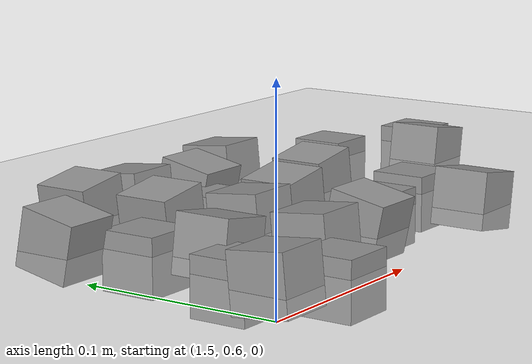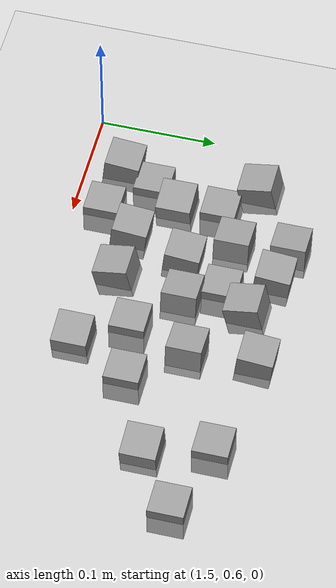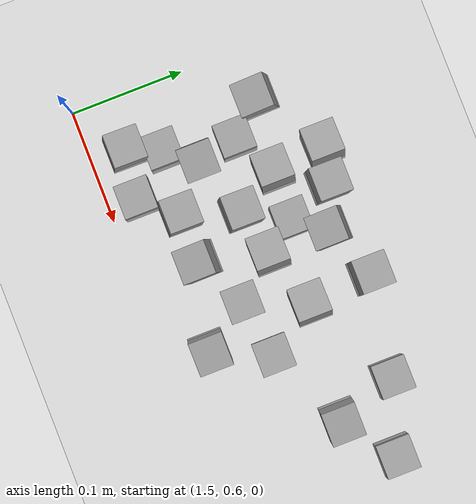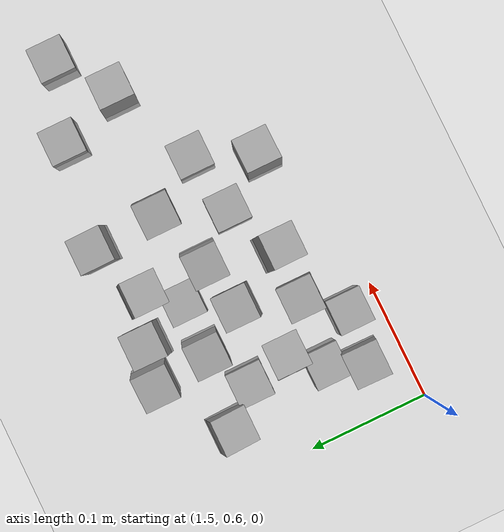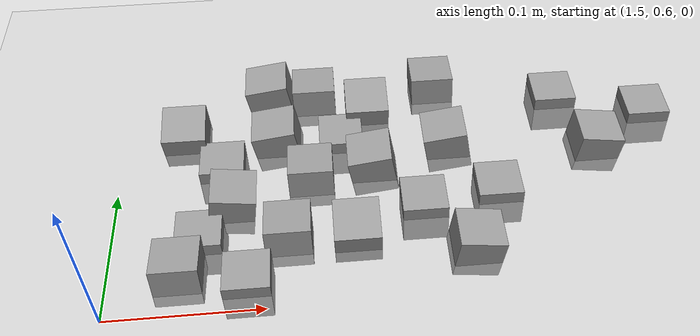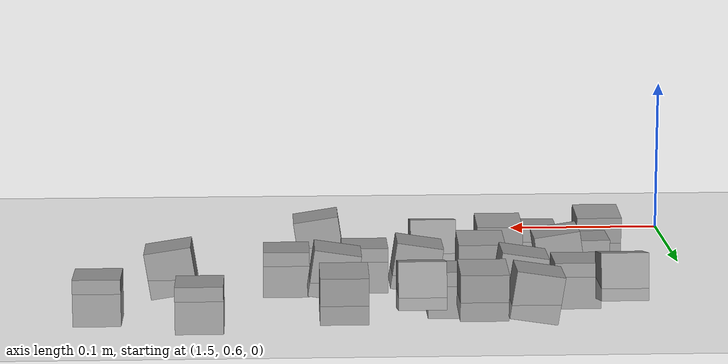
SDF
<sdf version="1.7">
 <world name="default">
  <model name="ground_plane">
   <static>1</static>
   <link name="link">
    <collision name="collision">
     <geometry><plane><normal>0 0 1</normal><size>100 100</size></plane></geometry>
     <surface><friction><ode><mu>100</mu><mu2>50</mu2></ode></friction></surface>
    </collision>
    <visual name="visual">
     <cast_shadows>0</cast_shadows>
     <geometry><plane><normal>0 0 1</normal><size>100 100</size></plane></geometry>
     <material>
      <script><uri>file://media/materials/scripts/gazebo.material</uri><name>Gazebo/Grey</name></script>
     </material>
    </visual>
   </link>
  </model>
  <model name="stone_road_0">
   <link name="link_0_clone_11">
    <inertial>
     <mass>1</mass>
     <inertia>
      <ixx>0.166667</ixx>
      <ixy>0</ixy>
      <ixz>0</ixz>
      <iyy>0.166667</iyy>
      <iyz>0</iyz>
      <izz>0.166667</izz>
     </inertia>
    </inertial>
    <pose>0.007758 0.071496 0.003778 0.2 -0 0</pose>
    <kinematic>1</kinematic>
    <visual name="visual">
     <geometry><box><size>0.03 0.03 0.03</size></box></geometry>
     <material>
      <lighting>1</lighting>
      <script><uri>file://media/materials/scripts/gazebo.material</uri><name>Gazebo/Grey</name></script>
      <shader type="pixel"><normal_map>__default__</normal_map></shader>
      <ambient>0.3 0.3 0.3 1</ambient>
      <diffuse>0.7 0.7 0.7 1</diffuse>
      <specular>0.01 0.01 0.01 1</specular>
      <emissive>0 0 0 1</emissive>
     </material>
    </visual>
    <collision name="collision">
     <geometry><box><size>0.03 0.03 0.03</size></box></geometry>
     <surface>
      <friction>
       <ode><mu>1</mu><mu2>1</mu2><fdir1>0 0 0</fdir1><slip1>0</slip1><slip2>0</slip2></ode>
       <torsional>
        <coefficient>1</coefficient>
        <patch_radius>0</patch_radius>
        <surface_radius>0</surface_radius>
        <use_patch_radius>1</use_patch_radius>
        <ode><slip>0</slip></ode>
       </torsional>
      </friction>
      <bounce><restitution_coefficient>0</restitution_coefficient><threshold>1e+06</threshold></bounce>
      <contact>
       <collide_without_contact>0</collide_without_contact>
       <collide_without_contact_bitmask>1</collide_without_contact_bitmask>
       <collide_bitmask>1</collide_bitmask>
       <ode>
        <soft_cfm>0</soft_cfm>
        <soft_erp>0.2</soft_erp>
        <kp>1e+13</kp>
        <kd>1</kd>
        <max_vel>0.01</max_vel>
        <min_depth>0</min_depth>
       </ode>
       <bullet>
        <split_impulse>1</split_impulse>
        <split_impulse_penetration_threshold>-0.01</split_impulse_penetration_threshold>
        <soft_cfm>0</soft_cfm>
        <soft_erp>0.2</soft_erp>
        <kp>1e+13</kp>
        <kd>1</kd>
       </bullet>
      </contact>
     </surface>
    </collision>
   </link>
   <link name="link_0_clone_2_clone_1">
    <inertial>
     <mass>1</mass>
     <inertia>
      <ixx>0.166667</ixx>
      <ixy>0</ixy>
      <ixz>0</ixz>
      <iyy>0.166667</iyy>
      <iyz>0</iyz>
      <izz>0.166667</izz>
     </inertia>
    </inertial>
    <pose>0.041447 0.006316 0.003778 0 0.15 0</pose>
    <kinematic>1</kinematic>
    <visual name="visual">
     <geometry><box><size>0.03 0.03 0.03</size></box></geometry>
     <material>
      <lighting>1</lighting>
      <script><uri>file://media/materials/scripts/gazebo.material</uri><name>Gazebo/Grey</name></script>
      <shader type="pixel"><normal_map>__default__</normal_map></shader>
      <ambient>0.3 0.3 0.3 1</ambient>
      <diffuse>0.7 0.7 0.7 1</diffuse>
      <specular>0.01 0.01 0.01 1</specular>
      <emissive>0 0 0 1</emissive>
     </material>
    </visual>
    <collision name="collision">
     <geometry><box><size>0.03 0.03 0.03</size></box></geometry>
     <surface>
      <friction>
       <ode><mu>1</mu><mu2>1</mu2><fdir1>0 0 0</fdir1><slip1>0</slip1><slip2>0</slip2></ode>
       <torsional>
        <coefficient>1</coefficient>
        <patch_radius>0</patch_radius>
        <surface_radius>0</surface_radius>
        <use_patch_radius>1</use_patch_radius>
        <ode><slip>0</slip></ode>
       </torsional>
      </friction>
      <bounce><restitution_coefficient>0</restitution_coefficient><threshold>1e+06</threshold></bounce>
      <contact>
       <collide_without_contact>0</collide_without_contact>
       <collide_without_contact_bitmask>1</collide_without_contact_bitmask>
       <collide_bitmask>1</collide_bitmask>
       <ode>
        <soft_cfm>0</soft_cfm>
        <soft_erp>0.2</soft_erp>
        <kp>1e+13</kp>
        <kd>1</kd>
        <max_vel>0.01</max_vel>
        <min_depth>0</min_depth>
       </ode>
       <bullet>
        <split_impulse>1</split_impulse>
        <split_impulse_penetration_threshold>-0.01</split_impulse_penetration_threshold>
        <soft_cfm>0</soft_cfm>
        <soft_erp>0.2</soft_erp>
        <kp>1e+13</kp>
        <kd>1</kd>
       </bullet>
      </contact>
     </surface>
    </collision>
   </link>
   <link name="link_0_clone_2_clone_2">
    <inertial>
     <mass>1</mass>
     <inertia>
      <ixx>0.166667</ixx>
      <ixy>0</ixy>
      <ixz>0</ixz>
      <iyy>0.166667</iyy>
      <iyz>0</iyz>
      <izz>0.166667</izz>
     </inertia>
    </inertial>
    <pose>0.066563 0.110568 0.003778 0 -0.15 0</pose>
    <kinematic>1</kinematic>
    <visual name="visual">
     <geometry><box><size>0.03 0.03 0.03</size></box></geometry>
     <material>
      <lighting>1</lighting>
      <script><uri>file://media/materials/scripts/gazebo.material</uri><name>Gazebo/Grey</name></script>
      <shader type="pixel"><normal_map>__default__</normal_map></shader>
      <ambient>0.3 0.3 0.3 1</ambient>
      <diffuse>0.7 0.7 0.7 1</diffuse>
      <specular>0.01 0.01 0.01 1</specular>
      <emissive>0 0 0 1</emissive>
     </material>
    </visual>
    <collision name="collision">
     <geometry><box><size>0.03 0.03 0.03</size></box></geometry>
     <surface>
      <friction>
       <ode><mu>1</mu><mu2>1</mu2><fdir1>0 0 0</fdir1><slip1>0</slip1><slip2>0</slip2></ode>
       <torsional>
        <coefficient>1</coefficient>
        <patch_radius>0</patch_radius>
        <surface_radius>0</surface_radius>
        <use_patch_radius>1</use_patch_radius>
        <ode><slip>0</slip></ode>
       </torsional>
      </friction>
      <bounce><restitution_coefficient>0</restitution_coefficient><threshold>1e+06</threshold></bounce>
      <contact>
       <collide_without_contact>0</collide_without_contact>
       <collide_without_contact_bitmask>1</collide_without_contact_bitmask>
       <collide_bitmask>1</collide_bitmask>
       <ode>
        <soft_cfm>0</soft_cfm>
        <soft_erp>0.2</soft_erp>
        <kp>1e+13</kp>
        <kd>1</kd>
        <max_vel>0.01</max_vel>
        <min_depth>0</min_depth>
       </ode>
       <bullet>
        <split_impulse>1</split_impulse>
        <split_impulse_penetration_threshold>-0.01</split_impulse_penetration_threshold>
        <soft_cfm>0</soft_cfm>
        <soft_erp>0.2</soft_erp>
        <kp>1e+13</kp>
        <kd>1</kd>
       </bullet>
      </contact>
     </surface>
    </collision>
   </link>
   <link name="link_0_clone_2_clone_2_clone">
    <inertial>
     <mass>1</mass>
     <inertia>
      <ixx>0.166667</ixx>
      <ixy>0</ixy>
      <ixz>0</ixz>
      <iyy>0.166667</iyy>
      <iyz>0</iyz>
      <izz>0.166667</izz>
     </inertia>
    </inertial>
    <pose>0.189059 0.051135 0.003778 0 -0.15 0</pose>
    <kinematic>1</kinematic>
    <visual name="visual">
     <geometry><box><size>0.03 0.03 0.03</size></box></geometry>
     <material>
      <lighting>1</lighting>
      <script><uri>file://media/materials/scripts/gazebo.material</uri><name>Gazebo/Grey</name></script>
      <shader type="pixel"><normal_map>__default__</normal_map></shader>
      <ambient>0.3 0.3 0.3 1</ambient>
      <diffuse>0.7 0.7 0.7 1</diffuse>
      <specular>0.01 0.01 0.01 1</specular>
      <emissive>0 0 0 1</emissive>
     </material>
    </visual>
    <collision name="collision">
     <geometry><box><size>0.03 0.03 0.03</size></box></geometry>
     <surface>
      <friction>
       <ode><mu>1</mu><mu2>1</mu2><fdir1>0 0 0</fdir1><slip1>0</slip1><slip2>0</slip2></ode>
       <torsional>
        <coefficient>1</coefficient>
        <patch_radius>0</patch_radius>
        <surface_radius>0</surface_radius>
        <use_patch_radius>1</use_patch_radius>
        <ode><slip>0</slip></ode>
       </torsional>
      </friction>
      <bounce><restitution_coefficient>0</restitution_coefficient><threshold>1e+06</threshold></bounce>
      <contact>
       <collide_without_contact>0</collide_without_contact>
       <collide_without_contact_bitmask>1</collide_without_contact_bitmask>
       <collide_bitmask>1</collide_bitmask>
       <ode>
        <soft_cfm>0</soft_cfm>
        <soft_erp>0.2</soft_erp>
        <kp>1e+13</kp>
        <kd>1</kd>
        <max_vel>0.01</max_vel>
        <min_depth>0</min_depth>
       </ode>
       <bullet>
        <split_impulse>1</split_impulse>
        <split_impulse_penetration_threshold>-0.01</split_impulse_penetration_threshold>
        <soft_cfm>0</soft_cfm>
        <soft_erp>0.2</soft_erp>
        <kp>1e+13</kp>
        <kd>1</kd>
       </bullet>
      </contact>
     </surface>
    </collision>
   </link>
   <link name="link_0_clone_2_clone_2_clone_13_clone_clone">
    <inertial>
     <mass>1</mass>
     <inertia>
      <ixx>0.166667</ixx>
      <ixy>0</ixy>
      <ixz>0</ixz>
      <iyy>0.166667</iyy>
      <iyz>0</iyz>
      <izz>0.166667</izz>
     </inertia>
    </inertial>
    <pose>0.184456 0.108712 0.003778 -0.1 0 0</pose>
    <kinematic>1</kinematic>
    <visual name="visual">
     <geometry><box><size>0.03 0.03 0.03</size></box></geometry>
     <material>
      <lighting>1</lighting>
      <script><uri>file://media/materials/scripts/gazebo.material</uri><name>Gazebo/Grey</name></script>
      <shader type="pixel"><normal_map>__default__</normal_map></shader>
      <ambient>0.3 0.3 0.3 1</ambient>
      <diffuse>0.7 0.7 0.7 1</diffuse>
      <specular>0.01 0.01 0.01 1</specular>
      <emissive>0 0 0 1</emissive>
     </material>
    </visual>
    <collision name="collision">
     <geometry><box><size>0.03 0.03 0.03</size></box></geometry>
     <surface>
      <friction>
       <ode><mu>1</mu><mu2>1</mu2><fdir1>0 0 0</fdir1><slip1>0</slip1><slip2>0</slip2></ode>
       <torsional>
        <coefficient>1</coefficient>
        <patch_radius>0</patch_radius>
        <surface_radius>0</surface_radius>
        <use_patch_radius>1</use_patch_radius>
        <ode><slip>0</slip></ode>
       </torsional>
      </friction>
      <bounce><restitution_coefficient>0</restitution_coefficient><threshold>1e+06</threshold></bounce>
      <contact>
       <collide_without_contact>0</collide_without_contact>
       <collide_without_contact_bitmask>1</collide_without_contact_bitmask>
       <collide_bitmask>1</collide_bitmask>
       <ode>
        <soft_cfm>0</soft_cfm>
        <soft_erp>0.2</soft_erp>
        <kp>1e+13</kp>
        <kd>1</kd>
        <max_vel>0.01</max_vel>
        <min_depth>0</min_depth>
       </ode>
       <bullet>
        <split_impulse>1</split_impulse>
        <split_impulse_penetration_threshold>-0.01</split_impulse_penetration_threshold>
        <soft_cfm>0</soft_cfm>
        <soft_erp>0.2</soft_erp>
        <kp>1e+13</kp>
        <kd>1</kd>
       </bullet>
      </contact>
     </surface>
    </collision>
   </link>
   <link name="link_0_clone_2_clone_2_clone_13_clone_clone_0">
    <inertial>
     <mass>1</mass>
     <inertia>
      <ixx>0.166667</ixx>
      <ixy>0</ixy>
      <ixz>0</ixz>
      <iyy>0.166667</iyy>
      <iyz>0</iyz>
      <izz>0.166667</izz>
     </inertia>
    </inertial>
    <pose>0.094072 0.02539 0.003778 -0.1 0 0</pose>
    <kinematic>1</kinematic>
    <visual name="visual">
     <geometry><box><size>0.03 0.03 0.03</size></box></geometry>
     <material>
      <lighting>1</lighting>
      <script><uri>file://media/materials/scripts/gazebo.material</uri><name>Gazebo/Grey</name></script>
      <shader type="pixel"><normal_map>__default__</normal_map></shader>
      <ambient>0.3 0.3 0.3 1</ambient>
      <diffuse>0.7 0.7 0.7 1</diffuse>
      <specular>0.01 0.01 0.01 1</specular>
      <emissive>0 0 0 1</emissive>
     </material>
    </visual>
    <collision name="collision">
     <geometry><box><size>0.03 0.03 0.03</size></box></geometry>
     <surface>
      <friction>
       <ode><mu>1</mu><mu2>1</mu2><fdir1>0 0 0</fdir1><slip1>0</slip1><slip2>0</slip2></ode>
       <torsional>
        <coefficient>1</coefficient>
        <patch_radius>0</patch_radius>
        <surface_radius>0</surface_radius>
        <use_patch_radius>1</use_patch_radius>
        <ode><slip>0</slip></ode>
       </torsional>
      </friction>
      <bounce><restitution_coefficient>0</restitution_coefficient><threshold>1e+06</threshold></bounce>
      <contact>
       <collide_without_contact>0</collide_without_contact>
       <collide_without_contact_bitmask>1</collide_without_contact_bitmask>
       <collide_bitmask>1</collide_bitmask>
       <ode>
        <soft_cfm>0</soft_cfm>
        <soft_erp>0.2</soft_erp>
        <kp>1e+13</kp>
        <kd>1</kd>
        <max_vel>0.01</max_vel>
        <min_depth>0</min_depth>
       </ode>
       <bullet>
        <split_impulse>1</split_impulse>
        <split_impulse_penetration_threshold>-0.01</split_impulse_penetration_threshold>
        <soft_cfm>0</soft_cfm>
        <soft_erp>0.2</soft_erp>
        <kp>1e+13</kp>
        <kd>1</kd>
       </bullet>
      </contact>
     </surface>
    </collision>
   </link>
   <link name="link_0_clone_2_clone_2_clone_13_clone_clone_1">
    <inertial>
     <mass>1</mass>
     <inertia>
      <ixx>0.166667</ixx>
      <ixy>0</ixy>
      <ixz>0</ixz>
      <iyy>0.166667</iyy>
      <iyz>0</iyz>
      <izz>0.166667</izz>
     </inertia>
    </inertial>
    <pose>0.098415 0.103772 0.003778 -0.1 0 0</pose>
    <kinematic>1</kinematic>
    <visual name="visual">
     <geometry><box><size>0.03 0.03 0.03</size></box></geometry>
     <material>
      <lighting>1</lighting>
      <script><uri>file://media/materials/scripts/gazebo.material</uri><name>Gazebo/Grey</name></script>
      <shader type="pixel"><normal_map>__default__</normal_map></shader>
      <ambient>0.3 0.3 0.3 1</ambient>
      <diffuse>0.7 0.7 0.7 1</diffuse>
      <specular>0.01 0.01 0.01 1</specular>
      <emissive>0 0 0 1</emissive>
     </material>
    </visual>
    <collision name="collision">
     <geometry><box><size>0.03 0.03 0.03</size></box></geometry>
     <surface>
      <friction>
       <ode><mu>1</mu><mu2>1</mu2><fdir1>0 0 0</fdir1><slip1>0</slip1><slip2>0</slip2></ode>
       <torsional>
        <coefficient>1</coefficient>
        <patch_radius>0</patch_radius>
        <surface_radius>0</surface_radius>
        <use_patch_radius>1</use_patch_radius>
        <ode><slip>0</slip></ode>
       </torsional>
      </friction>
      <bounce><restitution_coefficient>0</restitution_coefficient><threshold>1e+06</threshold></bounce>
      <contact>
       <collide_without_contact>0</collide_without_contact>
       <collide_without_contact_bitmask>1</collide_without_contact_bitmask>
       <collide_bitmask>1</collide_bitmask>
       <ode>
        <soft_cfm>0</soft_cfm>
        <soft_erp>0.2</soft_erp>
        <kp>1e+13</kp>
        <kd>1</kd>
        <max_vel>0.01</max_vel>
        <min_depth>0</min_depth>
       </ode>
       <bullet>
        <split_impulse>1</split_impulse>
        <split_impulse_penetration_threshold>-0.01</split_impulse_penetration_threshold>
        <soft_cfm>0</soft_cfm>
        <soft_erp>0.2</soft_erp>
        <kp>1e+13</kp>
        <kd>1</kd>
       </bullet>
      </contact>
     </surface>
    </collision>
   </link>
   <link name="link_0_clone_2_clone_2_clone_13_clone_clone_16_clone_1">
    <inertial>
     <mass>1</mass>
     <inertia>
      <ixx>0.166667</ixx>
      <ixy>0</ixy>
      <ixz>0</ixz>
      <iyy>0.166667</iyy>
      <iyz>0</iyz>
      <izz>0.166667</izz>
     </inertia>
    </inertial>
    <pose>0.033787 0.042837 -0.006222 0 -0 0</pose>
    <kinematic>1</kinematic>
    <visual name="visual">
     <geometry><box><size>0.03 0.03 0.03</size></box></geometry>
     <material>
      <lighting>1</lighting>
      <script><uri>file://media/materials/scripts/gazebo.material</uri><name>Gazebo/Grey</name></script>
      <shader type="pixel"><normal_map>__default__</normal_map></shader>
      <ambient>0.3 0.3 0.3 1</ambient>
      <diffuse>0.7 0.7 0.7 1</diffuse>
      <specular>0.01 0.01 0.01 1</specular>
      <emissive>0 0 0 1</emissive>
     </material>
    </visual>
    <collision name="collision">
     <geometry><box><size>0.03 0.03 0.03</size></box></geometry>
     <surface>
      <friction>
       <ode><mu>1</mu><mu2>1</mu2><fdir1>0 0 0</fdir1><slip1>0</slip1><slip2>0</slip2></ode>
       <torsional>
        <coefficient>1</coefficient>
        <patch_radius>0</patch_radius>
        <surface_radius>0</surface_radius>
        <use_patch_radius>1</use_patch_radius>
        <ode><slip>0</slip></ode>
       </torsional>
      </friction>
      <bounce><restitution_coefficient>0</restitution_coefficient><threshold>1e+06</threshold></bounce>
      <contact>
       <collide_without_contact>0</collide_without_contact>
       <collide_without_contact_bitmask>1</collide_without_contact_bitmask>
       <collide_bitmask>1</collide_bitmask>
       <ode>
        <soft_cfm>0</soft_cfm>
        <soft_erp>0.2</soft_erp>
        <kp>1e+13</kp>
        <kd>1</kd>
        <max_vel>0.01</max_vel>
        <min_depth>0</min_depth>
       </ode>
       <bullet>
        <split_impulse>1</split_impulse>
        <split_impulse_penetration_threshold>-0.01</split_impulse_penetration_threshold>
        <soft_cfm>0</soft_cfm>
        <soft_erp>0.2</soft_erp>
        <kp>1e+13</kp>
        <kd>1</kd>
       </bullet>
      </contact>
     </surface>
    </collision>
   </link>
   <link name="link_0_clone_2_clone_2_clone_13_clone_clone_16_clone_13">
    <inertial>
     <mass>1</mass>
     <inertia>
      <ixx>0.166667</ixx>
      <ixy>0</ixy>
      <ixz>0</ixz>
      <iyy>0.166667</iyy>
      <iyz>0</iyz>
      <izz>0.166667</izz>
     </inertia>
    </inertial>
    <pose>0.168013 -0.00203 -0.006222 0 -0 0</pose>
    <kinematic>1</kinematic>
    <visual name="visual">
     <geometry><box><size>0.03 0.03 0.03</size></box></geometry>
     <material>
      <lighting>1</lighting>
      <script><uri>file://media/materials/scripts/gazebo.material</uri><name>Gazebo/Grey</name></script>
      <shader type="pixel"><normal_map>__default__</normal_map></shader>
      <ambient>0.3 0.3 0.3 1</ambient>
      <diffuse>0.7 0.7 0.7 1</diffuse>
      <specular>0.01 0.01 0.01 1</specular>
      <emissive>0 0 0 1</emissive>
     </material>
    </visual>
    <collision name="collision">
     <geometry><box><size>0.03 0.03 0.03</size></box></geometry>
     <surface>
      <friction>
       <ode><mu>1</mu><mu2>1</mu2><fdir1>0 0 0</fdir1><slip1>0</slip1><slip2>0</slip2></ode>
       <torsional>
        <coefficient>1</coefficient>
        <patch_radius>0</patch_radius>
        <surface_radius>0</surface_radius>
        <use_patch_radius>1</use_patch_radius>
        <ode><slip>0</slip></ode>
       </torsional>
      </friction>
      <bounce><restitution_coefficient>0</restitution_coefficient><threshold>1e+06</threshold></bounce>
      <contact>
       <collide_without_contact>0</collide_without_contact>
       <collide_without_contact_bitmask>1</collide_without_contact_bitmask>
       <collide_bitmask>1</collide_bitmask>
       <ode>
        <soft_cfm>0</soft_cfm>
        <soft_erp>0.2</soft_erp>
        <kp>1e+13</kp>
        <kd>1</kd>
        <max_vel>0.01</max_vel>
        <min_depth>0</min_depth>
       </ode>
       <bullet>
        <split_impulse>1</split_impulse>
        <split_impulse_penetration_threshold>-0.01</split_impulse_penetration_threshold>
        <soft_cfm>0</soft_cfm>
        <soft_erp>0.2</soft_erp>
        <kp>1e+13</kp>
        <kd>1</kd>
       </bullet>
      </contact>
     </surface>
    </collision>
   </link>
   <link name="link_0_clone_2_clone_2_clone_13_clone_clone_16_clone_14">
    <inertial>
     <mass>1</mass>
     <inertia>
      <ixx>0.166667</ixx>
      <ixy>0</ixy>
      <ixz>0</ixz>
      <iyy>0.166667</iyy>
      <iyz>0</iyz>
      <izz>0.166667</izz>
     </inertia>
    </inertial>
    <pose>0.051911 -0.054424 -0.006222 0 -0 0</pose>
    <kinematic>1</kinematic>
    <visual name="visual">
     <geometry><box><size>0.03 0.03 0.03</size></box></geometry>
     <material>
      <lighting>1</lighting>
      <script><uri>file://media/materials/scripts/gazebo.material</uri><name>Gazebo/Grey</name></script>
      <shader type="pixel"><normal_map>__default__</normal_map></shader>
      <ambient>0.3 0.3 0.3 1</ambient>
      <diffuse>0.7 0.7 0.7 1</diffuse>
      <specular>0.01 0.01 0.01 1</specular>
      <emissive>0 0 0 1</emissive>
     </material>
    </visual>
    <collision name="collision">
     <geometry><box><size>0.03 0.03 0.03</size></box></geometry>
     <surface>
      <friction>
       <ode><mu>1</mu><mu2>1</mu2><fdir1>0 0 0</fdir1><slip1>0</slip1><slip2>0</slip2></ode>
       <torsional>
        <coefficient>1</coefficient>
        <patch_radius>0</patch_radius>
        <surface_radius>0</surface_radius>
        <use_patch_radius>1</use_patch_radius>
        <ode><slip>0</slip></ode>
       </torsional>
      </friction>
      <bounce><restitution_coefficient>0</restitution_coefficient><threshold>1e+06</threshold></bounce>
      <contact>
       <collide_without_contact>0</collide_without_contact>
       <collide_without_contact_bitmask>1</collide_without_contact_bitmask>
       <collide_bitmask>1</collide_bitmask>
       <ode>
        <soft_cfm>0</soft_cfm>
        <soft_erp>0.2</soft_erp>
        <kp>1e+13</kp>
        <kd>1</kd>
        <max_vel>0.01</max_vel>
        <min_depth>0</min_depth>
       </ode>
       <bullet>
        <split_impulse>1</split_impulse>
        <split_impulse_penetration_threshold>-0.01</split_impulse_penetration_threshold>
        <soft_cfm>0</soft_cfm>
        <soft_erp>0.2</soft_erp>
        <kp>1e+13</kp>
        <kd>1</kd>
       </bullet>
      </contact>
     </surface>
    </collision>
   </link>
   <link name="link_0_clone_2_clone_2_clone_13_clone_clone_16_clone_19">
    <inertial>
     <mass>1</mass>
     <inertia>
      <ixx>0.166667</ixx>
      <ixy>0</ixy>
      <ixz>0</ixz>
      <iyy>0.166667</iyy>
      <iyz>0</iyz>
      <izz>0.166667</izz>
     </inertia>
    </inertial>
    <pose>0.219442 0.006622 -0.006222 0 -0 0</pose>
    <kinematic>1</kinematic>
    <visual name="visual">
     <geometry><box><size>0.03 0.03 0.03</size></box></geometry>
     <material>
      <lighting>1</lighting>
      <script><uri>file://media/materials/scripts/gazebo.material</uri><name>Gazebo/Grey</name></script>
      <shader type="pixel"><normal_map>__default__</normal_map></shader>
      <ambient>0.3 0.3 0.3 1</ambient>
      <diffuse>0.7 0.7 0.7 1</diffuse>
      <specular>0.01 0.01 0.01 1</specular>
      <emissive>0 0 0 1</emissive>
     </material>
    </visual>
    <collision name="collision">
     <geometry><box><size>0.03 0.03 0.03</size></box></geometry>
     <surface>
      <friction>
       <ode><mu>1</mu><mu2>1</mu2><fdir1>0 0 0</fdir1><slip1>0</slip1><slip2>0</slip2></ode>
       <torsional>
        <coefficient>1</coefficient>
        <patch_radius>0</patch_radius>
        <surface_radius>0</surface_radius>
        <use_patch_radius>1</use_patch_radius>
        <ode><slip>0</slip></ode>
       </torsional>
      </friction>
      <bounce><restitution_coefficient>0</restitution_coefficient><threshold>1e+06</threshold></bounce>
      <contact>
       <collide_without_contact>0</collide_without_contact>
       <collide_without_contact_bitmask>1</collide_without_contact_bitmask>
       <collide_bitmask>1</collide_bitmask>
       <ode>
        <soft_cfm>0</soft_cfm>
        <soft_erp>0.2</soft_erp>
        <kp>1e+13</kp>
        <kd>1</kd>
        <max_vel>0.01</max_vel>
        <min_depth>0</min_depth>
       </ode>
       <bullet>
        <split_impulse>1</split_impulse>
        <split_impulse_penetration_threshold>-0.01</split_impulse_penetration_threshold>
        <soft_cfm>0</soft_cfm>
        <soft_erp>0.2</soft_erp>
        <kp>1e+13</kp>
        <kd>1</kd>
       </bullet>
      </contact>
     </surface>
    </collision>
   </link>
   <link name="link_0_clone_2_clone_2_clone_13_clone_clone_16_clone_20">
    <inertial>
     <mass>1</mass>
     <inertia>
      <ixx>0.166667</ixx>
      <ixy>0</ixy>
      <ixz>0</ixz>
      <iyy>0.166667</iyy>
      <iyz>0</iyz>
      <izz>0.166667</izz>
     </inertia>
    </inertial>
    <pose>0.115763 0.063063 -0.006222 0 -0 0</pose>
    <kinematic>1</kinematic>
    <visual name="visual">
     <geometry><box><size>0.03 0.03 0.03</size></box></geometry>
     <material>
      <lighting>1</lighting>
      <script><uri>file://media/materials/scripts/gazebo.material</uri><name>Gazebo/Grey</name></script>
      <shader type="pixel"><normal_map>__default__</normal_map></shader>
      <ambient>0.3 0.3 0.3 1</ambient>
      <diffuse>0.7 0.7 0.7 1</diffuse>
      <specular>0.01 0.01 0.01 1</specular>
      <emissive>0 0 0 1</emissive>
     </material>
    </visual>
    <collision name="collision">
     <geometry><box><size>0.03 0.03 0.03</size></box></geometry>
     <surface>
      <friction>
       <ode><mu>1</mu><mu2>1</mu2><fdir1>0 0 0</fdir1><slip1>0</slip1><slip2>0</slip2></ode>
       <torsional>
        <coefficient>1</coefficient>
        <patch_radius>0</patch_radius>
        <surface_radius>0</surface_radius>
        <use_patch_radius>1</use_patch_radius>
        <ode><slip>0</slip></ode>
       </torsional>
      </friction>
      <bounce><restitution_coefficient>0</restitution_coefficient><threshold>1e+06</threshold></bounce>
      <contact>
       <collide_without_contact>0</collide_without_contact>
       <collide_without_contact_bitmask>1</collide_without_contact_bitmask>
       <collide_bitmask>1</collide_bitmask>
       <ode>
        <soft_cfm>0</soft_cfm>
        <soft_erp>0.2</soft_erp>
        <kp>1e+13</kp>
        <kd>1</kd>
        <max_vel>0.01</max_vel>
        <min_depth>0</min_depth>
       </ode>
       <bullet>
        <split_impulse>1</split_impulse>
        <split_impulse_penetration_threshold>-0.01</split_impulse_penetration_threshold>
        <soft_cfm>0</soft_cfm>
        <soft_erp>0.2</soft_erp>
        <kp>1e+13</kp>
        <kd>1</kd>
       </bullet>
      </contact>
     </surface>
    </collision>
   </link>
   <link name="link_0_clone_2_clone_2_clone_13_clone_clone_16_clone_6">
    <inertial>
     <mass>1</mass>
     <inertia>
      <ixx>0.166667</ixx>
      <ixy>0</ixy>
      <ixz>0</ixz>
      <iyy>0.166667</iyy>
      <iyz>0</iyz>
      <izz>0.166667</izz>
     </inertia>
    </inertial>
    <pose>0.020774 -0.018727 -0.006222 0 -0 0</pose>
    <kinematic>1</kinematic>
    <visual name="visual">
     <geometry><box><size>0.03 0.03 0.03</size></box></geometry>
     <material>
      <lighting>1</lighting>
      <script><uri>file://media/materials/scripts/gazebo.material</uri><name>Gazebo/Grey</name></script>
      <shader type="pixel"><normal_map>__default__</normal_map></shader>
      <ambient>0.3 0.3 0.3 1</ambient>
      <diffuse>0.7 0.7 0.7 1</diffuse>
      <specular>0.01 0.01 0.01 1</specular>
      <emissive>0 0 0 1</emissive>
     </material>
    </visual>
    <collision name="collision">
     <geometry><box><size>0.03 0.03 0.03</size></box></geometry>
     <surface>
      <friction>
       <ode><mu>1</mu><mu2>1</mu2><fdir1>0 0 0</fdir1><slip1>0</slip1><slip2>0</slip2></ode>
       <torsional>
        <coefficient>1</coefficient>
        <patch_radius>0</patch_radius>
        <surface_radius>0</surface_radius>
        <use_patch_radius>1</use_patch_radius>
        <ode><slip>0</slip></ode>
       </torsional>
      </friction>
      <bounce><restitution_coefficient>0</restitution_coefficient><threshold>1e+06</threshold></bounce>
      <contact>
       <collide_without_contact>0</collide_without_contact>
       <collide_without_contact_bitmask>1</collide_without_contact_bitmask>
       <collide_bitmask>1</collide_bitmask>
       <ode>
        <soft_cfm>0</soft_cfm>
        <soft_erp>0.2</soft_erp>
        <kp>1e+13</kp>
        <kd>1</kd>
        <max_vel>0.01</max_vel>
        <min_depth>0</min_depth>
       </ode>
       <bullet>
        <split_impulse>1</split_impulse>
        <split_impulse_penetration_threshold>-0.01</split_impulse_penetration_threshold>
        <soft_cfm>0</soft_cfm>
        <soft_erp>0.2</soft_erp>
        <kp>1e+13</kp>
        <kd>1</kd>
       </bullet>
      </contact>
     </surface>
    </collision>
   </link>
   <link name="link_0_clone_2_clone_2_clone_13_clone_clone_4">
    <inertial>
     <mass>1</mass>
     <inertia>
      <ixx>0.166667</ixx>
      <ixy>0</ixy>
      <ixz>0</ixz>
      <iyy>0.166667</iyy>
      <iyz>0</iyz>
      <izz>0.166667</izz>
     </inertia>
    </inertial>
    <pose>0.078198 -0.024053 0.003778 -0.1 0 0</pose>
    <kinematic>1</kinematic>
    <visual name="visual">
     <geometry><box><size>0.03 0.03 0.03</size></box></geometry>
     <material>
      <lighting>1</lighting>
      <script><uri>file://media/materials/scripts/gazebo.material</uri><name>Gazebo/Grey</name></script>
      <shader type="pixel"><normal_map>__default__</normal_map></shader>
      <ambient>0.3 0.3 0.3 1</ambient>
      <diffuse>0.7 0.7 0.7 1</diffuse>
      <specular>0.01 0.01 0.01 1</specular>
      <emissive>0 0 0 1</emissive>
     </material>
    </visual>
    <collision name="collision">
     <geometry><box><size>0.03 0.03 0.03</size></box></geometry>
     <surface>
      <friction>
       <ode><mu>1</mu><mu2>1</mu2><fdir1>0 0 0</fdir1><slip1>0</slip1><slip2>0</slip2></ode>
       <torsional>
        <coefficient>1</coefficient>
        <patch_radius>0</patch_radius>
        <surface_radius>0</surface_radius>
        <use_patch_radius>1</use_patch_radius>
        <ode><slip>0</slip></ode>
       </torsional>
      </friction>
      <bounce><restitution_coefficient>0</restitution_coefficient><threshold>1e+06</threshold></bounce>
      <contact>
       <collide_without_contact>0</collide_without_contact>
       <collide_without_contact_bitmask>1</collide_without_contact_bitmask>
       <collide_bitmask>1</collide_bitmask>
       <ode>
        <soft_cfm>0</soft_cfm>
        <soft_erp>0.2</soft_erp>
        <kp>1e+13</kp>
        <kd>1</kd>
        <max_vel>0.01</max_vel>
        <min_depth>0</min_depth>
       </ode>
       <bullet>
        <split_impulse>1</split_impulse>
        <split_impulse_penetration_threshold>-0.01</split_impulse_penetration_threshold>
        <soft_cfm>0</soft_cfm>
        <soft_erp>0.2</soft_erp>
        <kp>1e+13</kp>
        <kd>1</kd>
       </bullet>
      </contact>
     </surface>
    </collision>
   </link>
   <link name="link_0_clone_2_clone_2_clone_13_clone_clone_6">
    <inertial>
     <mass>1</mass>
     <inertia>
      <ixx>0.166667</ixx>
      <ixy>0</ixy>
      <ixz>0</ixz>
      <iyy>0.166667</iyy>
      <iyz>0</iyz>
      <izz>0.166667</izz>
     </inertia>
    </inertial>
    <pose>0.009445 -0.048118 0.003778 -0.1 0 0</pose>
    <kinematic>1</kinematic>
    <visual name="visual">
     <geometry><box><size>0.03 0.03 0.03</size></box></geometry>
     <material>
      <lighting>1</lighting>
      <script><uri>file://media/materials/scripts/gazebo.material</uri><name>Gazebo/Grey</name></script>
      <shader type="pixel"><normal_map>__default__</normal_map></shader>
      <ambient>0.3 0.3 0.3 1</ambient>
      <diffuse>0.7 0.7 0.7 1</diffuse>
      <specular>0.01 0.01 0.01 1</specular>
      <emissive>0 0 0 1</emissive>
     </material>
    </visual>
    <collision name="collision">
     <geometry><box><size>0.03 0.03 0.03</size></box></geometry>
     <surface>
      <friction>
       <ode><mu>1</mu><mu2>1</mu2><fdir1>0 0 0</fdir1><slip1>0</slip1><slip2>0</slip2></ode>
       <torsional>
        <coefficient>1</coefficient>
        <patch_radius>0</patch_radius>
        <surface_radius>0</surface_radius>
        <use_patch_radius>1</use_patch_radius>
        <ode><slip>0</slip></ode>
       </torsional>
      </friction>
      <bounce><restitution_coefficient>0</restitution_coefficient><threshold>1e+06</threshold></bounce>
      <contact>
       <collide_without_contact>0</collide_without_contact>
       <collide_without_contact_bitmask>1</collide_without_contact_bitmask>
       <collide_bitmask>1</collide_bitmask>
       <ode>
        <soft_cfm>0</soft_cfm>
        <soft_erp>0.2</soft_erp>
        <kp>1e+13</kp>
        <kd>1</kd>
        <max_vel>0.01</max_vel>
        <min_depth>0</min_depth>
       </ode>
       <bullet>
        <split_impulse>1</split_impulse>
        <split_impulse_penetration_threshold>-0.01</split_impulse_penetration_threshold>
        <soft_cfm>0</soft_cfm>
        <soft_erp>0.2</soft_erp>
        <kp>1e+13</kp>
        <kd>1</kd>
       </bullet>
      </contact>
     </surface>
    </collision>
   </link>
   <link name="link_0_clone_2_clone_2_clone_6">
    <inertial>
     <mass>1</mass>
     <inertia>
      <ixx>0.166667</ixx>
      <ixy>0</ixy>
      <ixz>0</ixz>
      <iyy>0.166667</iyy>
      <iyz>0</iyz>
      <izz>0.166667</izz>
     </inertia>
    </inertial>
    <pose>0.136141 0.034017 0.003778 0 -0.15 0</pose>
    <kinematic>1</kinematic>
    <visual name="visual">
     <geometry><box><size>0.03 0.03 0.03</size></box></geometry>
     <material>
      <lighting>1</lighting>
      <script><uri>file://media/materials/scripts/gazebo.material</uri><name>Gazebo/Grey</name></script>
      <shader type="pixel"><normal_map>__default__</normal_map></shader>
      <ambient>0.3 0.3 0.3 1</ambient>
      <diffuse>0.7 0.7 0.7 1</diffuse>
      <specular>0.01 0.01 0.01 1</specular>
      <emissive>0 0 0 1</emissive>
     </material>
    </visual>
    <collision name="collision">
     <geometry><box><size>0.03 0.03 0.03</size></box></geometry>
     <surface>
      <friction>
       <ode><mu>1</mu><mu2>1</mu2><fdir1>0 0 0</fdir1><slip1>0</slip1><slip2>0</slip2></ode>
       <torsional>
        <coefficient>1</coefficient>
        <patch_radius>0</patch_radius>
        <surface_radius>0</surface_radius>
        <use_patch_radius>1</use_patch_radius>
        <ode><slip>0</slip></ode>
       </torsional>
      </friction>
      <bounce><restitution_coefficient>0</restitution_coefficient><threshold>1e+06</threshold></bounce>
      <contact>
       <collide_without_contact>0</collide_without_contact>
       <collide_without_contact_bitmask>1</collide_without_contact_bitmask>
       <collide_bitmask>1</collide_bitmask>
       <ode>
        <soft_cfm>0</soft_cfm>
        <soft_erp>0.2</soft_erp>
        <kp>1e+13</kp>
        <kd>1</kd>
        <max_vel>0.01</max_vel>
        <min_depth>0</min_depth>
       </ode>
       <bullet>
        <split_impulse>1</split_impulse>
        <split_impulse_penetration_threshold>-0.01</split_impulse_penetration_threshold>
        <soft_cfm>0</soft_cfm>
        <soft_erp>0.2</soft_erp>
        <kp>1e+13</kp>
        <kd>1</kd>
       </bullet>
      </contact>
     </surface>
    </collision>
   </link>
   <link name="link_0_clone_2_clone_2_clone_9">
    <inertial>
     <mass>1</mass>
     <inertia>
      <ixx>0.166667</ixx>
      <ixy>0</ixy>
      <ixz>0</ixz>
      <iyy>0.166667</iyy>
      <iyz>0</iyz>
      <izz>0.166667</izz>
     </inertia>
    </inertial>
    <pose>0.071478 0.063212 0.003778 0 -0.15 0</pose>
    <kinematic>1</kinematic>
    <visual name="visual">
     <geometry><box><size>0.03 0.03 0.03</size></box></geometry>
     <material>
      <lighting>1</lighting>
      <script><uri>file://media/materials/scripts/gazebo.material</uri><name>Gazebo/Grey</name></script>
      <shader type="pixel"><normal_map>__default__</normal_map></shader>
      <ambient>0.3 0.3 0.3 1</ambient>
      <diffuse>0.7 0.7 0.7 1</diffuse>
      <specular>0.01 0.01 0.01 1</specular>
      <emissive>0 0 0 1</emissive>
     </material>
    </visual>
    <collision name="collision">
     <geometry><box><size>0.03 0.03 0.03</size></box></geometry>
     <surface>
      <friction>
       <ode><mu>1</mu><mu2>1</mu2><fdir1>0 0 0</fdir1><slip1>0</slip1><slip2>0</slip2></ode>
       <torsional>
        <coefficient>1</coefficient>
        <patch_radius>0</patch_radius>
        <surface_radius>0</surface_radius>
        <use_patch_radius>1</use_patch_radius>
        <ode><slip>0</slip></ode>
       </torsional>
      </friction>
      <bounce><restitution_coefficient>0</restitution_coefficient><threshold>1e+06</threshold></bounce>
      <contact>
       <collide_without_contact>0</collide_without_contact>
       <collide_without_contact_bitmask>1</collide_without_contact_bitmask>
       <collide_bitmask>1</collide_bitmask>
       <ode>
        <soft_cfm>0</soft_cfm>
        <soft_erp>0.2</soft_erp>
        <kp>1e+13</kp>
        <kd>1</kd>
        <max_vel>0.01</max_vel>
        <min_depth>0</min_depth>
       </ode>
       <bullet>
        <split_impulse>1</split_impulse>
        <split_impulse_penetration_threshold>-0.01</split_impulse_penetration_threshold>
        <soft_cfm>0</soft_cfm>
        <soft_erp>0.2</soft_erp>
        <kp>1e+13</kp>
        <kd>1</kd>
       </bullet>
      </contact>
     </surface>
    </collision>
   </link>
   <link name="link_0_clone_2_clone_8">
    <inertial>
     <mass>1</mass>
     <inertia>
      <ixx>0.166667</ixx>
      <ixy>0</ixy>
      <ixz>0</ixz>
      <iyy>0.166667</iyy>
      <iyz>0</iyz>
      <izz>0.166667</izz>
     </inertia>
    </inertial>
    <pose>0.197388 -0.042712 0.003778 0 0.15 0</pose>
    <kinematic>1</kinematic>
    <visual name="visual">
     <geometry><box><size>0.03 0.03 0.03</size></box></geometry>
     <material>
      <lighting>1</lighting>
      <script><uri>file://media/materials/scripts/gazebo.material</uri><name>Gazebo/Grey</name></script>
      <shader type="pixel"><normal_map>__default__</normal_map></shader>
      <ambient>0.3 0.3 0.3 1</ambient>
      <diffuse>0.7 0.7 0.7 1</diffuse>
      <specular>0.01 0.01 0.01 1</specular>
      <emissive>0 0 0 1</emissive>
     </material>
    </visual>
    <collision name="collision">
     <geometry><box><size>0.03 0.03 0.03</size></box></geometry>
     <surface>
      <friction>
       <ode><mu>1</mu><mu2>1</mu2><fdir1>0 0 0</fdir1><slip1>0</slip1><slip2>0</slip2></ode>
       <torsional>
        <coefficient>1</coefficient>
        <patch_radius>0</patch_radius>
        <surface_radius>0</surface_radius>
        <use_patch_radius>1</use_patch_radius>
        <ode><slip>0</slip></ode>
       </torsional>
      </friction>
      <bounce><restitution_coefficient>0</restitution_coefficient><threshold>1e+06</threshold></bounce>
      <contact>
       <collide_without_contact>0</collide_without_contact>
       <collide_without_contact_bitmask>1</collide_without_contact_bitmask>
       <collide_bitmask>1</collide_bitmask>
       <ode>
        <soft_cfm>0</soft_cfm>
        <soft_erp>0.2</soft_erp>
        <kp>1e+13</kp>
        <kd>1</kd>
        <max_vel>0.01</max_vel>
        <min_depth>0</min_depth>
       </ode>
       <bullet>
        <split_impulse>1</split_impulse>
        <split_impulse_penetration_threshold>-0.01</split_impulse_penetration_threshold>
        <soft_cfm>0</soft_cfm>
        <soft_erp>0.2</soft_erp>
        <kp>1e+13</kp>
        <kd>1</kd>
       </bullet>
      </contact>
     </surface>
    </collision>
   </link>
   <link name="link_0_clone_8">
    <inertial>
     <mass>1</mass>
     <inertia>
      <ixx>0.166667</ixx>
      <ixy>0</ixy>
      <ixz>0</ixz>
      <iyy>0.166667</iyy>
      <iyz>0</iyz>
      <izz>0.166667</izz>
     </inertia>
    </inertial>
    <pose>0.135749 0.089175 0.003778 0.2 -0 0</pose>
    <kinematic>1</kinematic>
    <visual name="visual">
     <geometry><box><size>0.03 0.03 0.03</size></box></geometry>
     <material>
      <lighting>1</lighting>
      <script><uri>file://media/materials/scripts/gazebo.material</uri><name>Gazebo/Grey</name></script>
      <shader type="pixel"><normal_map>__default__</normal_map></shader>
      <ambient>0.3 0.3 0.3 1</ambient>
      <diffuse>0.7 0.7 0.7 1</diffuse>
      <specular>0.01 0.01 0.01 1</specular>
      <emissive>0 0 0 1</emissive>
     </material>
    </visual>
    <collision name="collision">
     <geometry><box><size>0.03 0.03 0.03</size></box></geometry>
     <surface>
      <friction>
       <ode><mu>1</mu><mu2>1</mu2><fdir1>0 0 0</fdir1><slip1>0</slip1><slip2>0</slip2></ode>
       <torsional>
        <coefficient>1</coefficient>
        <patch_radius>0</patch_radius>
        <surface_radius>0</surface_radius>
        <use_patch_radius>1</use_patch_radius>
        <ode><slip>0</slip></ode>
       </torsional>
      </friction>
      <bounce><restitution_coefficient>0</restitution_coefficient><threshold>1e+06</threshold></bounce>
      <contact>
       <collide_without_contact>0</collide_without_contact>
       <collide_without_contact_bitmask>1</collide_without_contact_bitmask>
       <collide_bitmask>1</collide_bitmask>
       <ode>
        <soft_cfm>0</soft_cfm>
        <soft_erp>0.2</soft_erp>
        <kp>1e+13</kp>
        <kd>1</kd>
        <max_vel>0.01</max_vel>
        <min_depth>0</min_depth>
       </ode>
       <bullet>
        <split_impulse>1</split_impulse>
        <split_impulse_penetration_threshold>-0.01</split_impulse_penetration_threshold>
        <soft_cfm>0</soft_cfm>
        <soft_erp>0.2</soft_erp>
        <kp>1e+13</kp>
        <kd>1</kd>
       </bullet>
      </contact>
     </surface>
    </collision>
   </link>
   <link name="link_0_clone_9">
    <inertial>
     <mass>1</mass>
     <inertia>
      <ixx>0.166667</ixx>
      <ixy>0</ixy>
      <ixz>0</ixz>
      <iyy>0.166667</iyy>
      <iyz>0</iyz>
      <izz>0.166667</izz>
     </inertia>
    </inertial>
    <pose>0.122173 -0.025452 0.003778 0.2 -0 0</pose>
    <kinematic>1</kinematic>
    <visual name="visual">
     <geometry><box><size>0.03 0.03 0.03</size></box></geometry>
     <material>
      <lighting>1</lighting>
      <script><uri>file://media/materials/scripts/gazebo.material</uri><name>Gazebo/Grey</name></script>
      <shader type="pixel"><normal_map>__default__</normal_map></shader>
      <ambient>0.3 0.3 0.3 1</ambient>
      <diffuse>0.7 0.7 0.7 1</diffuse>
      <specular>0.01 0.01 0.01 1</specular>
      <emissive>0 0 0 1</emissive>
     </material>
    </visual>
    <collision name="collision">
     <geometry><box><size>0.03 0.03 0.03</size></box></geometry>
     <surface>
      <friction>
       <ode><mu>1</mu><mu2>1</mu2><fdir1>0 0 0</fdir1><slip1>0</slip1><slip2>0</slip2></ode>
       <torsional>
        <coefficient>1</coefficient>
        <patch_radius>0</patch_radius>
        <surface_radius>0</surface_radius>
        <use_patch_radius>1</use_patch_radius>
        <ode><slip>0</slip></ode>
       </torsional>
      </friction>
      <bounce><restitution_coefficient>0</restitution_coefficient><threshold>1e+06</threshold></bounce>
      <contact>
       <collide_without_contact>0</collide_without_contact>
       <collide_without_contact_bitmask>1</collide_without_contact_bitmask>
       <collide_bitmask>1</collide_bitmask>
       <ode>
        <soft_cfm>0</soft_cfm>
        <soft_erp>0.2</soft_erp>
        <kp>1e+13</kp>
        <kd>1</kd>
        <max_vel>0.01</max_vel>
        <min_depth>0</min_depth>
       </ode>
       <bullet>
        <split_impulse>1</split_impulse>
        <split_impulse_penetration_threshold>-0.01</split_impulse_penetration_threshold>
        <soft_cfm>0</soft_cfm>
        <soft_erp>0.2</soft_erp>
        <kp>1e+13</kp>
        <kd>1</kd>
       </bullet>
      </contact>
     </surface>
    </collision>
   </link>
   <static>0</static>
   <pose>1.53544 0.679184 -0 0 -0 0</pose>
  </model>
  <model name="stone_road_5">
   <link name="link_0_clone_2_clone_2_clone_13_clone_clone_16_clone_28">
    <inertial>
     <mass>1</mass>
     <inertia>
      <ixx>0.166667</ixx>
      <ixy>0</ixy>
      <ixz>0</ixz>
      <iyy>0.166667</iyy>
      <iyz>0</iyz>
      <izz>0.166667</izz>
     </inertia>
    </inertial>
    <pose>-0.10708 -0.209042 -0.006222 0 -0 0</pose>
    <kinematic>1</kinematic>
    <visual name="visual">
     <geometry><box><size>0.03 0.03 0.03</size></box></geometry>
     <material>
      <lighting>1</lighting>
      <script><uri>file://media/materials/scripts/gazebo.material</uri><name>Gazebo/Grey</name></script>
      <shader type="pixel"><normal_map>__default__</normal_map></shader>
      <ambient>0.3 0.3 0.3 1</ambient>
      <diffuse>0.7 0.7 0.7 1</diffuse>
      <specular>0.01 0.01 0.01 1</specular>
      <emissive>0 0 0 1</emissive>
     </material>
    </visual>
    <collision name="collision">
     <geometry><box><size>0.03 0.03 0.03</size></box></geometry>
     <surface>
      <friction>
       <ode><mu>1</mu><mu2>1</mu2><fdir1>0 0 0</fdir1><slip1>0</slip1><slip2>0</slip2></ode>
       <torsional>
        <coefficient>1</coefficient>
        <patch_radius>0</patch_radius>
        <surface_radius>0</surface_radius>
        <use_patch_radius>1</use_patch_radius>
        <ode><slip>0</slip></ode>
       </torsional>
      </friction>
      <bounce><restitution_coefficient>0</restitution_coefficient><threshold>1e+06</threshold></bounce>
      <contact>
       <collide_without_contact>0</collide_without_contact>
       <collide_without_contact_bitmask>1</collide_without_contact_bitmask>
       <collide_bitmask>1</collide_bitmask>
       <ode>
        <soft_cfm>0</soft_cfm>
        <soft_erp>0.2</soft_erp>
        <kp>1e+13</kp>
        <kd>1</kd>
        <max_vel>0.01</max_vel>
        <min_depth>0</min_depth>
       </ode>
       <bullet>
        <split_impulse>1</split_impulse>
        <split_impulse_penetration_threshold>-0.01</split_impulse_penetration_threshold>
        <soft_cfm>0</soft_cfm>
        <soft_erp>0.2</soft_erp>
        <kp>1e+13</kp>
        <kd>1</kd>
       </bullet>
      </contact>
     </surface>
    </collision>
   </link>
   <link name="link_0_clone_2_clone_2_clone_13_clone_clone_16_clone_29">
    <inertial>
     <mass>1</mass>
     <inertia>
      <ixx>0.166667</ixx>
      <ixy>0</ixy>
      <ixz>0</ixz>
      <iyy>0.166667</iyy>
      <iyz>0</iyz>
      <izz>0.166667</izz>
     </inertia>
    </inertial>
    <pose>-0.042964 -0.229632 -0.006222 0 -0 0</pose>
    <kinematic>1</kinematic>
    <visual name="visual">
     <geometry><box><size>0.03 0.03 0.03</size></box></geometry>
     <material>
      <lighting>1</lighting>
      <script><uri>file://media/materials/scripts/gazebo.material</uri><name>Gazebo/Grey</name></script>
      <shader type="pixel"><normal_map>__default__</normal_map></shader>
      <ambient>0.3 0.3 0.3 1</ambient>
      <diffuse>0.7 0.7 0.7 1</diffuse>
      <specular>0.01 0.01 0.01 1</specular>
      <emissive>0 0 0 1</emissive>
     </material>
    </visual>
    <collision name="collision">
     <geometry><box><size>0.03 0.03 0.03</size></box></geometry>
     <surface>
      <friction>
       <ode><mu>1</mu><mu2>1</mu2><fdir1>0 0 0</fdir1><slip1>0</slip1><slip2>0</slip2></ode>
       <torsional>
        <coefficient>1</coefficient>
        <patch_radius>0</patch_radius>
        <surface_radius>0</surface_radius>
        <use_patch_radius>1</use_patch_radius>
        <ode><slip>0</slip></ode>
       </torsional>
      </friction>
      <bounce><restitution_coefficient>0</restitution_coefficient><threshold>1e+06</threshold></bounce>
      <contact>
       <collide_without_contact>0</collide_without_contact>
       <collide_without_contact_bitmask>1</collide_without_contact_bitmask>
       <collide_bitmask>1</collide_bitmask>
       <ode>
        <soft_cfm>0</soft_cfm>
        <soft_erp>0.2</soft_erp>
        <kp>1e+13</kp>
        <kd>1</kd>
        <max_vel>0.01</max_vel>
        <min_depth>0</min_depth>
       </ode>
       <bullet>
        <split_impulse>1</split_impulse>
        <split_impulse_penetration_threshold>-0.01</split_impulse_penetration_threshold>
        <soft_cfm>0</soft_cfm>
        <soft_erp>0.2</soft_erp>
        <kp>1e+13</kp>
        <kd>1</kd>
       </bullet>
      </contact>
     </surface>
    </collision>
   </link>
   <link name="link_0_clone_2_clone_6">
    <inertial>
     <mass>1</mass>
     <inertia>
      <ixx>0.166667</ixx>
      <ixy>0</ixy>
      <ixz>0</ixz>
      <iyy>0.166667</iyy>
      <iyz>0</iyz>
      <izz>0.166667</izz>
     </inertia>
    </inertial>
    <pose>-0.087859 -0.263184 0.003778 0 0.15 0</pose>
    <kinematic>1</kinematic>
    <visual name="visual">
     <geometry><box><size>0.03 0.03 0.03</size></box></geometry>
     <material>
      <lighting>1</lighting>
      <script><uri>file://media/materials/scripts/gazebo.material</uri><name>Gazebo/Grey</name></script>
      <shader type="pixel"><normal_map>__default__</normal_map></shader>
      <ambient>0.3 0.3 0.3 1</ambient>
      <diffuse>0.7 0.7 0.7 1</diffuse>
      <specular>0.01 0.01 0.01 1</specular>
      <emissive>0 0 0 1</emissive>
     </material>
    </visual>
    <collision name="collision">
     <geometry><box><size>0.03 0.03 0.03</size></box></geometry>
     <surface>
      <friction>
       <ode><mu>1</mu><mu2>1</mu2><fdir1>0 0 0</fdir1><slip1>0</slip1><slip2>0</slip2></ode>
       <torsional>
        <coefficient>1</coefficient>
        <patch_radius>0</patch_radius>
        <surface_radius>0</surface_radius>
        <use_patch_radius>1</use_patch_radius>
        <ode><slip>0</slip></ode>
       </torsional>
      </friction>
      <bounce><restitution_coefficient>0</restitution_coefficient><threshold>1e+06</threshold></bounce>
      <contact>
       <collide_without_contact>0</collide_without_contact>
       <collide_without_contact_bitmask>1</collide_without_contact_bitmask>
       <collide_bitmask>1</collide_bitmask>
       <ode>
        <soft_cfm>0</soft_cfm>
        <soft_erp>0.2</soft_erp>
        <kp>1e+13</kp>
        <kd>1</kd>
        <max_vel>0.01</max_vel>
        <min_depth>0</min_depth>
       </ode>
       <bullet>
        <split_impulse>1</split_impulse>
        <split_impulse_penetration_threshold>-0.01</split_impulse_penetration_threshold>
        <soft_cfm>0</soft_cfm>
        <soft_erp>0.2</soft_erp>
        <kp>1e+13</kp>
        <kd>1</kd>
       </bullet>
      </contact>
     </surface>
    </collision>
   </link>
   <static>0</static>
   <pose>1.91599 0.982306 -0 0 -0 0</pose>
  </model>
 </world>
</sdf>
